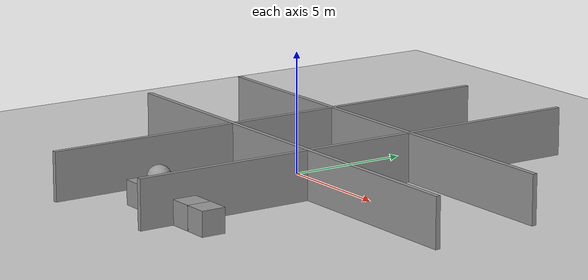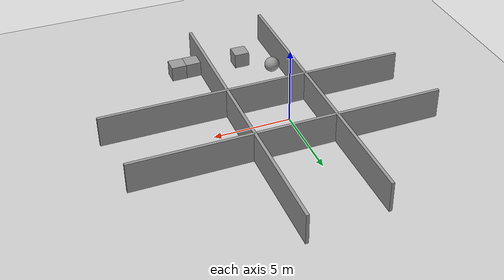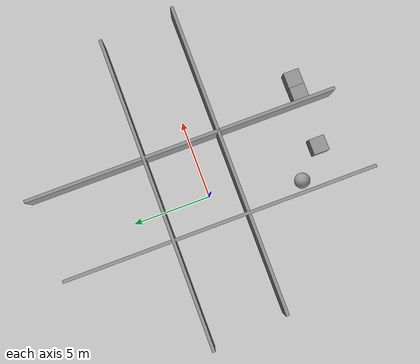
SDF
<sdf version="1.4">
 <world name="default">
  <light name="sun" type="directional">
   <pose>0 0 10 0 -0 0</pose>
   <diffuse>0.8 0.8 0.8 1</diffuse>
   <specular>0.2 0.2 0.2 1</specular>
   <attenuation>
    <range>1000</range>
    <constant>0.9</constant>
    <linear>0.01</linear>
    <quadratic>0.001</quadratic>
   </attenuation>
   <direction>-0.5 0.1 -0.9</direction>
  </light>
  <model name="ground_plane">
   <static>1</static>
   <link name="link">
    <collision name="collision">
     <geometry><plane><normal>0 0 1</normal><size>100 100</size></plane></geometry>
     <surface><friction><ode><mu>100</mu><mu2>50</mu2></ode></friction></surface>
    </collision>
    <visual name="visual">
     <cast_shadows>0</cast_shadows>
     <geometry><plane><normal>0 0 1</normal><size>100 100</size></plane></geometry>
     <material>
      <script><uri>file://media/materials/scripts/gazebo.material</uri><name>Gazebo/Grey</name></script>
     </material>
    </visual>
    <velocity_decay><linear>0</linear><angular>0</angular></velocity_decay>
   </link>
  </model>
  <physics type="ode">
   <max_step_size>0.001</max_step_size>
   <real_time_factor>1</real_time_factor>
   <real_time_update_rate>1000</real_time_update_rate>
   <gravity>0 0 -9.8</gravity>
  </physics>
  <scene><ambient>0.4 0.4 0.4 1</ambient><background>0.7 0.7 0.7 1</background><shadows>1</shadows></scene>
  <model name="unit_box_1">
   <pose>5.07075 -7.47575 0.5 0 -0 2.2e-05</pose>
   <link name="link">
    <inertial>
     <mass>1</mass>
     <inertia><ixx>1</ixx><ixy>0</ixy><ixz>0</ixz><iyy>1</iyy><iyz>0</iyz><izz>1</izz></inertia>
    </inertial>
    <collision name="collision"><geometry><box><size>1 1 1</size></box></geometry></collision>
    <visual name="visual">
     <geometry><box><size>1 1 1</size></box></geometry>
     <material>
      <script><uri>file://media/materials/scripts/gazebo.material</uri><name>Gazebo/Grey</name></script>
     </material>
    </visual>
    <velocity_decay><linear>0</linear><angular>0</angular></velocity_decay>
   </link>
   <static>0</static>
  </model>
  <model name="unit_box_2">
   <pose>4.07073 -7.48544 0.5 0 -0 3e-06</pose>
   <link name="link">
    <inertial>
     <mass>1</mass>
     <inertia><ixx>1</ixx><ixy>0</ixy><ixz>0</ixz><iyy>1</iyy><iyz>0</iyz><izz>1</izz></inertia>
    </inertial>
    <collision name="collision"><geometry><box><size>1 1 1</size></box></geometry></collision>
    <visual name="visual">
     <geometry><box><size>1 1 1</size></box></geometry>
     <material>
      <script><uri>file://media/materials/scripts/gazebo.material</uri><name>Gazebo/Grey</name></script>
     </material>
    </visual>
    <velocity_decay><linear>0</linear><angular>0</angular></velocity_decay>
   </link>
   <static>0</static>
  </model>
  <model name="unit_box_3">
   <pose>0.614332 -7.44756 0.5 0 -0 -1e-06</pose>
   <link name="link">
    <inertial>
     <mass>1</mass>
     <inertia><ixx>1</ixx><ixy>0</ixy><ixz>0</ixz><iyy>1</iyy><iyz>0</iyz><izz>1</izz></inertia>
    </inertial>
    <collision name="collision"><geometry><box><size>1 1 1</size></box></geometry></collision>
    <visual name="visual">
     <geometry><box><size>1 1 1</size></box></geometry>
     <material>
      <script><uri>file://media/materials/scripts/gazebo.material</uri><name>Gazebo/Grey</name></script>
     </material>
    </visual>
    <velocity_decay><linear>0</linear><angular>0</angular></velocity_decay>
   </link>
   <static>0</static>
  </model>
  <model name="unit_sphere_1">
   <pose>-1.09627 -5.75676 0.5 0 -0.025883 0</pose>
   <link name="link">
    <inertial>
     <mass>1</mass>
     <inertia><ixx>1</ixx><ixy>0</ixy><ixz>0</ixz><iyy>1</iyy><iyz>0</iyz><izz>1</izz></inertia>
    </inertial>
    <collision name="collision"><geometry><sphere><radius>0.5</radius></sphere></geometry></collision>
    <visual name="visual">
     <geometry><sphere><radius>0.5</radius></sphere></geometry>
     <material>
      <script><uri>file://media/materials/scripts/gazebo.material</uri><name>Gazebo/Grey</name></script>
     </material>
    </visual>
    <velocity_decay><linear>0</linear><angular>0</angular></velocity_decay>
   </link>
   <static>0</static>
  </model>
  <model name="wall_1_model">
   <pose>1.24587 3.00695 1 0 -0 0</pose>
   <link name="link">
    <collision name="collision"><geometry><box><size>20 0.2 2</size></box></geometry></collision>
    <visual name="visual">
     <geometry><box><size>20 0.2 2</size></box></geometry>
     <material>
      <script><uri>file://media/materials/scripts/gazebo.material</uri><name>Gazebo/Grey</name></script>
     </material>
    </visual>
    <velocity_decay><linear>0</linear><angular>0</angular></velocity_decay>
   </link>
   <static>1</static>
  </model>
  <model name="wall_2_model">
   <pose>1.68608 -1.82322 1 0 -0 0</pose>
   <link name="link">
    <collision name="collision"><geometry><box><size>20 0.2 2</size></box></geometry></collision>
    <visual name="visual">
     <geometry><box><size>20 0.2 2</size></box></geometry>
     <material>
      <script><uri>file://media/materials/scripts/gazebo.material</uri><name>Gazebo/Grey</name></script>
     </material>
    </visual>
    <velocity_decay><linear>0</linear><angular>0</angular></velocity_decay>
   </link>
   <static>1</static>
  </model>
  <model name="wall_3_model">
   <pose>3.47073 0.601888 1 0 -0 0</pose>
   <link name="link">
    <collision name="collision"><geometry><box><size>0.2 20 2</size></box></geometry></collision>
    <visual name="visual">
     <geometry><box><size>0.2 20 2</size></box></geometry>
     <material>
      <script><uri>file://media/materials/scripts/gazebo.material</uri><name>Gazebo/Grey</name></script>
     </material>
    </visual>
    <velocity_decay><linear>0</linear><angular>0</angular></velocity_decay>
   </link>
   <static>1</static>
  </model>
  <model name="wall_4_model">
   <pose>-1.81951 -0.00933 1 0 -0 0</pose>
   <link name="link">
    <collision name="collision"><geometry><box><size>0.2 20 2</size></box></geometry></collision>
    <visual name="visual">
     <geometry><box><size>0.2 20 2</size></box></geometry>
     <material>
      <script><uri>file://media/materials/scripts/gazebo.material</uri><name>Gazebo/Grey</name></script>
     </material>
    </visual>
    <velocity_decay><linear>0</linear><angular>0</angular></velocity_decay>
   </link>
   <static>1</static>
  </model>
 </world>
</sdf>
